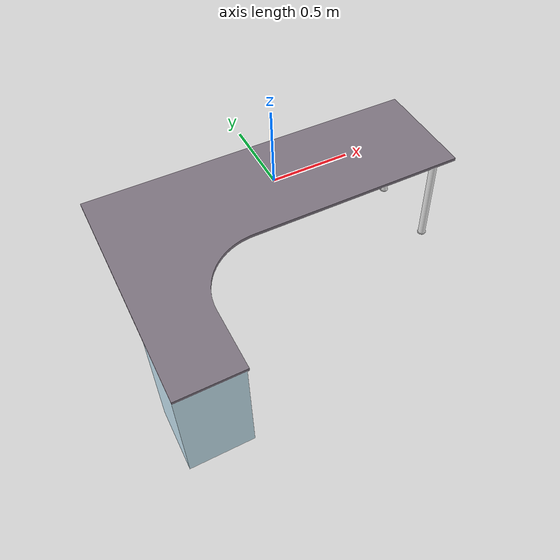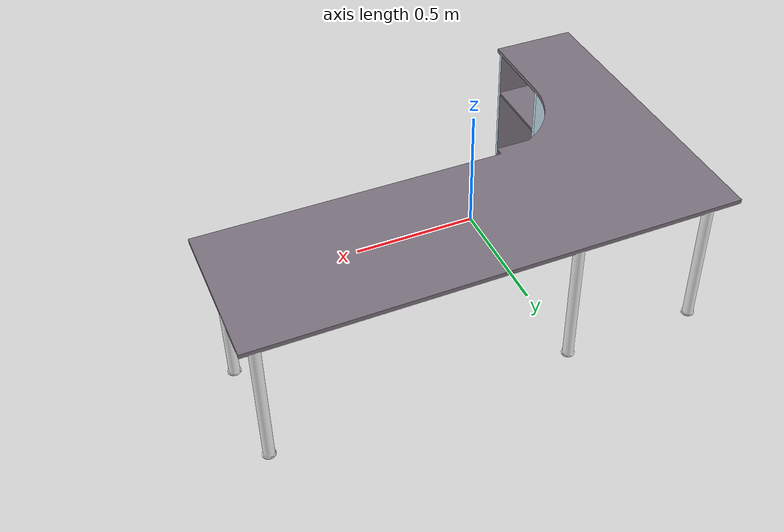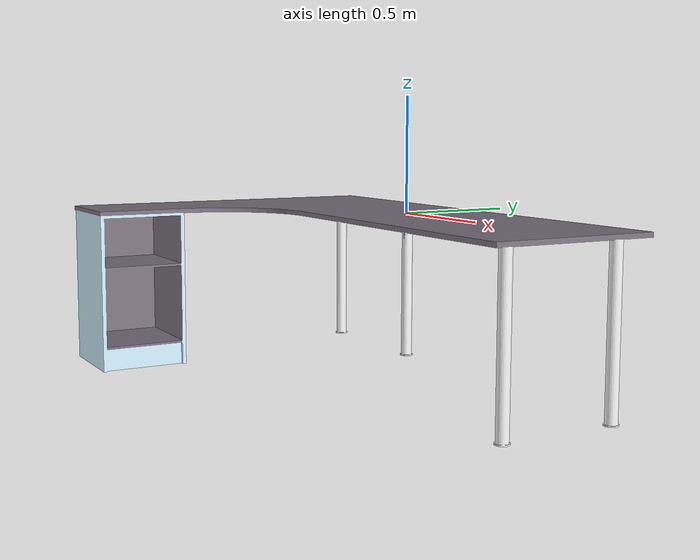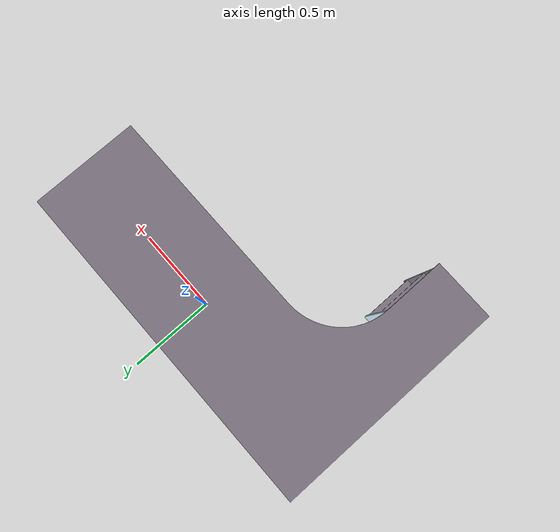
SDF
<?xml version="1.0" encoding="utf-8"?>
<sdf version='1.6'>
  <model name='Desk_1_FL'>
    <link name='Desk_1_FL'>
      <pose frame=''>0 0 0 0 -0 0</pose>
      <inertial>
        <pose frame=''>-0.36701 -0.35406 -0.14663 0 -0 0</pose>
        <mass>61.693</mass>
        <inertia>
          <ixx>17.631</ixx>
          <ixy>-12.318</ixy>
          <ixz>-2.627</ixz>
          <iyy>33.311</iyy>
          <iyz>2.8376</iyz>
          <izz>45.139</izz>
        </inertia>
      </inertial>
      <collision name='Desk_1_FL_collision'>
        <pose frame=''>0 0 0 1.5708 -0 0</pose>
        <geometry>
          <mesh>
            <scale>1 1 1</scale>
            <uri>model://Desk_1_FL/meshes/Desk_1_FL.dae</uri>
          </mesh>
        </geometry>
      </collision>
      <visual name='Desk_1_FL_visual'>
        <pose frame=''>0 0 0 1.5708 -0 0</pose>
        <geometry>
          <mesh>
            <scale>1 1 1</scale>
            <uri>model://Desk_1_FL/meshes/Desk_1_FL.dae</uri>
          </mesh>
        </geometry>
      </visual>
    </link>
  </model>
</sdf>
